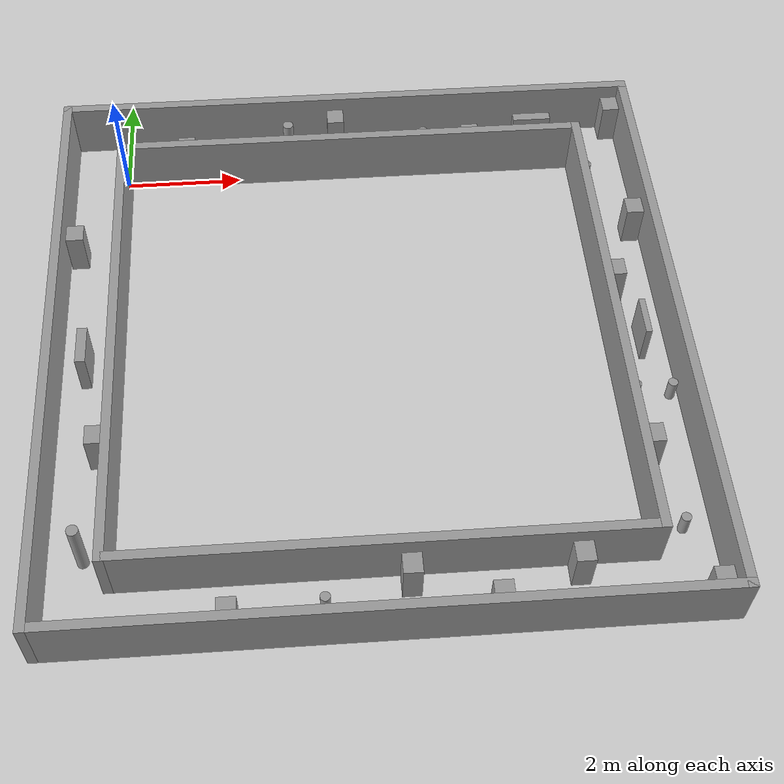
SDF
<sdf version="1.4">
 <world name="default">
  <light name="sun" type="directional">
   <pose>0 0 10 0 -0 0</pose>
   <diffuse>0.8 0.8 0.8 1</diffuse>
   <specular>0.2 0.2 0.2 1</specular>
   <attenuation>
    <range>1000</range>
    <constant>0.9</constant>
    <linear>0.01</linear>
    <quadratic>0.001</quadratic>
   </attenuation>
   <direction>-0.5 0.1 -0.9</direction>
   <spot><inner_angle>0</inner_angle><outer_angle>0</outer_angle><falloff>0</falloff></spot>
  </light>
  <model name="ground_plane">
   <static>1</static>
   <link name="link">
    <collision name="collision">
     <geometry><plane><normal>0 0 1</normal><size>100 100</size></plane></geometry>
     <surface>
      <contact><collide_bitmask>65535</collide_bitmask></contact>
      <friction><ode><mu>100</mu><mu2>50</mu2></ode></friction>
     </surface>
    </collision>
    <visual name="visual">
     <cast_shadows>0</cast_shadows>
     <geometry><plane><normal>0 0 1</normal><size>100 100</size></plane></geometry>
     <material>
      <script><uri>file://media/materials/scripts/gazebo.material</uri><name>Gazebo/Grey</name></script>
     </material>
    </visual>
   </link>
  </model>
  <gravity>0 0 -9.8</gravity>
  <magnetic_field>6e-06 2.3e-05 -4.2e-05</magnetic_field>
  <atmosphere type="adiabatic"/>
  <physics type="ode">
   <max_step_size>0.001</max_step_size>
   <real_time_factor>1</real_time_factor>
   <real_time_update_rate>1000</real_time_update_rate>
  </physics>
  <scene><ambient>0.4 0.4 0.4 1</ambient><background>0.7 0.7 0.7 1</background><shadows>1</shadows></scene>
  <spherical_coordinates>
   <surface_model>EARTH_WGS84</surface_model>
   <latitude_deg>0</latitude_deg>
   <longitude_deg>0</longitude_deg>
   <elevation>0</elevation>
   <heading_deg>0</heading_deg>
  </spherical_coordinates>
  <model name="maze_0">
   <pose>4 -4 0 0 -0 0</pose>
   <link name="Wall_1">
    <collision name="Wall_1_Collision">
     <geometry><box><size>10.15 0.15 1</size></box></geometry>
     <pose>0 0 0.5 0 -0 0</pose>
    </collision>
    <visual name="Wall_1_Visual">
     <pose>0 0 0.5 0 -0 0</pose>
     <geometry><box><size>10.15 0.15 1</size></box></geometry>
     <material>
      <script><uri>file://media/materials/scripts/gazebo.material</uri><name>Gazebo/Grey</name></script>
      <ambient>1 1 1 1</ambient>
     </material>
     <meta><layer>0</layer></meta>
    </visual>
    <pose>-0 5 0 0 -0 0</pose>
   </link>
   <link name="Wall_2">
    <collision name="Wall_2_Collision">
     <geometry><box><size>10.15 0.15 1</size></box></geometry>
     <pose>0 0 0.5 0 -0 0</pose>
    </collision>
    <visual name="Wall_2_Visual">
     <pose>0 0 0.5 0 -0 0</pose>
     <geometry><box><size>10.15 0.15 1</size></box></geometry>
     <material>
      <script><uri>file://media/materials/scripts/gazebo.material</uri><name>Gazebo/Grey</name></script>
      <ambient>1 1 1 1</ambient>
     </material>
     <meta><layer>0</layer></meta>
    </visual>
    <pose>5 0 0 0 -0 -1.5708</pose>
   </link>
   <link name="Wall_3">
    <collision name="Wall_3_Collision">
     <geometry><box><size>10.15 0.15 1</size></box></geometry>
     <pose>0 0 0.5 0 -0 0</pose>
    </collision>
    <visual name="Wall_3_Visual">
     <pose>0 0 0.5 0 -0 0</pose>
     <geometry><box><size>10.15 0.15 1</size></box></geometry>
     <material>
      <script><uri>file://media/materials/scripts/gazebo.material</uri><name>Gazebo/Grey</name></script>
      <ambient>1 1 1 1</ambient>
     </material>
     <meta><layer>0</layer></meta>
    </visual>
    <pose>-0 -5 0 0 -0 3.14159</pose>
   </link>
   <link name="Wall_4">
    <collision name="Wall_4_Collision">
     <geometry><box><size>10.15 0.15 1</size></box></geometry>
     <pose>0 0 0.5 0 -0 0</pose>
    </collision>
    <visual name="Wall_4_Visual">
     <pose>0 0 0.5 0 -0 0</pose>
     <geometry><box><size>10.15 0.15 1</size></box></geometry>
     <material>
      <script><uri>file://media/materials/scripts/gazebo.material</uri><name>Gazebo/Grey</name></script>
      <ambient>1 1 1 1</ambient>
     </material>
     <meta><layer>0</layer></meta>
    </visual>
    <pose>-5 0 0 0 -0 1.5708</pose>
   </link>
   <link name="Wall_6">
    <collision name="Wall_6_Collision">
     <geometry><box><size>8.15 0.15 1</size></box></geometry>
     <pose>0 0 0.5 0 -0 0</pose>
    </collision>
    <visual name="Wall_6_Visual">
     <pose>0 0 0.5 0 -0 0</pose>
     <geometry><box><size>8.15 0.15 1</size></box></geometry>
     <material>
      <script><uri>file://media/materials/scripts/gazebo.material</uri><name>Gazebo/Grey</name></script>
      <ambient>1 1 1 1</ambient>
     </material>
     <meta><layer>0</layer></meta>
    </visual>
    <pose>-0 4 0 0 -0 0</pose>
   </link>
   <link name="Wall_7">
    <collision name="Wall_7_Collision">
     <geometry><box><size>8.15 0.15 1</size></box></geometry>
     <pose>0 0 0.5 0 -0 0</pose>
    </collision>
    <visual name="Wall_7_Visual">
     <pose>0 0 0.5 0 -0 0</pose>
     <geometry><box><size>8.15 0.15 1</size></box></geometry>
     <material>
      <script><uri>file://media/materials/scripts/gazebo.material</uri><name>Gazebo/Grey</name></script>
      <ambient>1 1 1 1</ambient>
     </material>
     <meta><layer>0</layer></meta>
    </visual>
    <pose>4 0 0 0 -0 -1.5708</pose>
   </link>
   <link name="Wall_8">
    <collision name="Wall_8_Collision">
     <geometry><box><size>8.15 0.15 1</size></box></geometry>
     <pose>0 0 0.5 0 -0 0</pose>
    </collision>
    <visual name="Wall_8_Visual">
     <pose>0 0 0.5 0 -0 0</pose>
     <geometry><box><size>8.15 0.15 1</size></box></geometry>
     <material>
      <script><uri>file://media/materials/scripts/gazebo.material</uri><name>Gazebo/Grey</name></script>
      <ambient>1 1 1 1</ambient>
     </material>
     <meta><layer>0</layer></meta>
    </visual>
    <pose>-0 -4 0 0 -0 3.14159</pose>
   </link>
   <link name="Wall_9">
    <collision name="Wall_9_Collision">
     <geometry><box><size>8.15 0.15 1</size></box></geometry>
     <pose>0 0 0.5 0 -0 0</pose>
    </collision>
    <visual name="Wall_9_Visual">
     <pose>0 0 0.5 0 -0 0</pose>
     <geometry><box><size>8.15 0.15 1</size></box></geometry>
     <material>
      <script><uri>file://media/materials/scripts/gazebo.material</uri><name>Gazebo/Grey</name></script>
      <ambient>1 1 1 1</ambient>
     </material>
     <meta><layer>0</layer></meta>
    </visual>
    <pose>-4 0 0 0 -0 1.5708</pose>
   </link>
   <static>1</static>
  </model>
  <model name="unit_box_clone">
   <pose>6.16031 0.241752 0.371756 2e-06 -4e-06 4.7e-05</pose>
   <link name="link">
    <inertial>
     <mass>1</mass>
     <inertia>
      <ixx>0.166667</ixx>
      <ixy>0</ixy>
      <ixz>0</ixz>
      <iyy>0.166667</iyy>
      <iyz>0</iyz>
      <izz>0.166667</izz>
     </inertia>
    </inertial>
    <collision name="collision">
     <geometry><box><size>0.289995 0.321886 0.743514</size></box></geometry>
    </collision>
    <visual name="visual">
     <geometry><box><size>0.289995 0.321886 0.743514</size></box></geometry>
     <material>
      <script><name>Gazebo/Grey</name><uri>file://media/materials/scripts/gazebo.material</uri></script>
     </material>
    </visual>
   </link>
  </model>
  <model name="unit_box_clone_0">
   <pose>8.78002 0.764057 0.371757 0 -0 0</pose>
   <link name="link">
    <inertial>
     <mass>1</mass>
     <inertia>
      <ixx>0.166667</ixx>
      <ixy>0</ixy>
      <ixz>0</ixz>
      <iyy>0.166667</iyy>
      <iyz>0</iyz>
      <izz>0.166667</izz>
     </inertia>
    </inertial>
    <collision name="collision">
     <geometry><box><size>0.289995 0.321886 0.743514</size></box></geometry>
    </collision>
    <visual name="visual">
     <geometry><box><size>0.289995 0.321886 0.743514</size></box></geometry>
     <material>
      <script><name>Gazebo/Grey</name><uri>file://media/materials/scripts/gazebo.material</uri></script>
     </material>
    </visual>
   </link>
  </model>
  <model name="unit_box_clone_1">
   <pose>8.75983 -1.74367 0.371756 5e-06 2e-06 -3.5e-05</pose>
   <link name="link">
    <inertial>
     <mass>1</mass>
     <inertia>
      <ixx>0.166667</ixx>
      <ixy>0</ixy>
      <ixz>0</ixz>
      <iyy>0.166667</iyy>
      <iyz>0</iyz>
      <izz>0.166667</izz>
     </inertia>
    </inertial>
    <collision name="collision">
     <geometry><box><size>0.289995 0.321886 0.743514</size></box></geometry>
    </collision>
    <visual name="visual">
     <geometry><box><size>0.289995 0.321886 0.743514</size></box></geometry>
     <material>
      <script><name>Gazebo/Grey</name><uri>file://media/materials/scripts/gazebo.material</uri></script>
     </material>
    </visual>
   </link>
  </model>
  <model name="unit_box_clone_2">
   <pose>8.22 -3.07746 0.371757 0 -0 6e-06</pose>
   <link name="link">
    <inertial>
     <mass>1</mass>
     <inertia>
      <ixx>0.166667</ixx>
      <ixy>0</ixy>
      <ixz>0</ixz>
      <iyy>0.166667</iyy>
      <iyz>0</iyz>
      <izz>0.166667</izz>
     </inertia>
    </inertial>
    <collision name="collision">
     <geometry><box><size>0.289995 0.321886 0.743514</size></box></geometry>
    </collision>
    <visual name="visual">
     <geometry><box><size>0.289995 0.321886 0.743514</size></box></geometry>
     <material>
      <script><name>Gazebo/Grey</name><uri>file://media/materials/scripts/gazebo.material</uri></script>
     </material>
    </visual>
   </link>
  </model>
  <model name="unit_box_clone_3">
   <pose>8.2215 -6.32916 0.371757 -0 -0 -9e-06</pose>
   <link name="link">
    <inertial>
     <mass>1</mass>
     <inertia>
      <ixx>0.166667</ixx>
      <ixy>0</ixy>
      <ixz>0</ixz>
      <iyy>0.166667</iyy>
      <iyz>0</iyz>
      <izz>0.166667</izz>
     </inertia>
    </inertial>
    <collision name="collision">
     <geometry><box><size>0.289995 0.321886 0.743514</size></box></geometry>
    </collision>
    <visual name="visual">
     <geometry><box><size>0.289995 0.321886 0.743514</size></box></geometry>
     <material>
      <script><name>Gazebo/Grey</name><uri>file://media/materials/scripts/gazebo.material</uri></script>
     </material>
    </visual>
   </link>
  </model>
  <model name="unit_box_clone_4">
   <pose>8.74183 -8.75702 0.371756 5e-06 -2e-06 -3.7e-05</pose>
   <link name="link">
    <inertial>
     <mass>1</mass>
     <inertia>
      <ixx>0.166667</ixx>
      <ixy>0</ixy>
      <ixz>0</ixz>
      <iyy>0.166667</iyy>
      <iyz>0</iyz>
      <izz>0.166667</izz>
     </inertia>
    </inertial>
    <collision name="collision">
     <geometry><box><size>0.289995 0.321886 0.743514</size></box></geometry>
    </collision>
    <visual name="visual">
     <geometry><box><size>0.289995 0.321886 0.743514</size></box></geometry>
     <material>
      <script><name>Gazebo/Grey</name><uri>file://media/materials/scripts/gazebo.material</uri></script>
     </material>
    </visual>
   </link>
  </model>
  <model name="unit_box_clone_5">
   <pose>6.84068 -8.23595 0.371757 0 0 -3e-06</pose>
   <link name="link">
    <inertial>
     <mass>1</mass>
     <inertia>
      <ixx>0.166667</ixx>
      <ixy>0</ixy>
      <ixz>0</ixz>
      <iyy>0.166667</iyy>
      <iyz>0</iyz>
      <izz>0.166667</izz>
     </inertia>
    </inertial>
    <collision name="collision">
     <geometry><box><size>0.289995 0.321886 0.743514</size></box></geometry>
    </collision>
    <visual name="visual">
     <geometry><box><size>0.289995 0.321886 0.743514</size></box></geometry>
     <material>
      <script><name>Gazebo/Grey</name><uri>file://media/materials/scripts/gazebo.material</uri></script>
     </material>
    </visual>
   </link>
  </model>
  <model name="unit_box_clone_6">
   <pose>5.62265 -8.76128 0.371757 0 -0 1.5e-05</pose>
   <link name="link">
    <inertial>
     <mass>1</mass>
     <inertia>
      <ixx>0.166667</ixx>
      <ixy>0</ixy>
      <ixz>0</ixz>
      <iyy>0.166667</iyy>
      <iyz>0</iyz>
      <izz>0.166667</izz>
     </inertia>
    </inertial>
    <collision name="collision">
     <geometry><box><size>0.289995 0.321886 0.743514</size></box></geometry>
    </collision>
    <visual name="visual">
     <geometry><box><size>0.289995 0.321886 0.743514</size></box></geometry>
     <material>
      <script><name>Gazebo/Grey</name><uri>file://media/materials/scripts/gazebo.material</uri></script>
     </material>
    </visual>
   </link>
  </model>
  <model name="unit_box_clone_7">
   <pose>4.38037 -8.25694 0.371756 -2e-06 -4e-06 2e-05</pose>
   <link name="link">
    <inertial>
     <mass>1</mass>
     <inertia>
      <ixx>0.166667</ixx>
      <ixy>0</ixy>
      <ixz>0</ixz>
      <iyy>0.166667</iyy>
      <iyz>0</iyz>
      <izz>0.166667</izz>
     </inertia>
    </inertial>
    <collision name="collision">
     <geometry><box><size>0.289995 0.321886 0.743514</size></box></geometry>
    </collision>
    <visual name="visual">
     <geometry><box><size>0.289995 0.321886 0.743514</size></box></geometry>
     <material>
      <script><name>Gazebo/Grey</name><uri>file://media/materials/scripts/gazebo.material</uri></script>
     </material>
    </visual>
   </link>
  </model>
  <model name="unit_box_clone_8">
   <pose>1.75034 -8.76405 0.371757 0 0 -3e-06</pose>
   <link name="link">
    <inertial>
     <mass>1</mass>
     <inertia>
      <ixx>0.166667</ixx>
      <ixy>0</ixy>
      <ixz>0</ixz>
      <iyy>0.166667</iyy>
      <iyz>0</iyz>
      <izz>0.166667</izz>
     </inertia>
    </inertial>
    <collision name="collision">
     <geometry><box><size>0.289995 0.321886 0.743514</size></box></geometry>
    </collision>
    <visual name="visual">
     <geometry><box><size>0.289995 0.321886 0.743514</size></box></geometry>
     <material>
      <script><name>Gazebo/Grey</name><uri>file://media/materials/scripts/gazebo.material</uri></script>
     </material>
    </visual>
   </link>
  </model>
  <model name="unit_box_clone_10">
   <pose>-0.220545 -5.80223 0.371757 0 -0 2e-05</pose>
   <link name="link">
    <inertial>
     <mass>1</mass>
     <inertia>
      <ixx>0.166667</ixx>
      <ixy>0</ixy>
      <ixz>0</ixz>
      <iyy>0.166667</iyy>
      <iyz>0</iyz>
      <izz>0.166667</izz>
     </inertia>
    </inertial>
    <collision name="collision">
     <geometry><box><size>0.289995 0.321886 0.743514</size></box></geometry>
    </collision>
    <visual name="visual">
     <geometry><box><size>0.289995 0.321886 0.743514</size></box></geometry>
     <material>
      <script><name>Gazebo/Grey</name><uri>file://media/materials/scripts/gazebo.material</uri></script>
     </material>
    </visual>
   </link>
  </model>
  <model name="unit_box_clone_11">
   <pose>-0.752718 -1.743 0.371758 -3e-06 0 -0.00014</pose>
   <link name="link">
    <inertial>
     <mass>1</mass>
     <inertia>
      <ixx>0.166667</ixx>
      <ixy>0</ixy>
      <ixz>0</ixz>
      <iyy>0.166667</iyy>
      <iyz>0</iyz>
      <izz>0.166667</izz>
     </inertia>
    </inertial>
    <collision name="collision">
     <geometry><box><size>0.289995 0.321886 0.743514</size></box></geometry>
    </collision>
    <visual name="visual">
     <geometry><box><size>0.289995 0.321886 0.743514</size></box></geometry>
     <material>
      <script><name>Gazebo/Grey</name><uri>file://media/materials/scripts/gazebo.material</uri></script>
     </material>
    </visual>
   </link>
  </model>
  <model name="unit_box_clone_clone">
   <pose>3.77127 0.764057 0.371757 0 -0 0</pose>
   <link name="link">
    <inertial>
     <mass>1</mass>
     <inertia>
      <ixx>0.166667</ixx>
      <ixy>0</ixy>
      <ixz>0</ixz>
      <iyy>0.166667</iyy>
      <iyz>0</iyz>
      <izz>0.166667</izz>
     </inertia>
    </inertial>
    <collision name="collision">
     <geometry><box><size>0.289995 0.321886 0.743514</size></box></geometry>
    </collision>
    <visual name="visual">
     <geometry><box><size>0.289995 0.321886 0.743514</size></box></geometry>
     <material>
      <script><name>Gazebo/Grey</name><uri>file://media/materials/scripts/gazebo.material</uri></script>
     </material>
    </visual>
   </link>
  </model>
  <model name="unit_box_clone_clone_0">
   <pose>1.09824 0.235944 0.371757 0 -0 0</pose>
   <link name="link">
    <inertial>
     <mass>1</mass>
     <inertia>
      <ixx>0.166667</ixx>
      <ixy>0</ixy>
      <ixz>0</ixz>
      <iyy>0.166667</iyy>
      <iyz>0</iyz>
      <izz>0.166667</izz>
     </inertia>
    </inertial>
    <collision name="collision">
     <geometry><box><size>0.289995 0.321886 0.743514</size></box></geometry>
    </collision>
    <visual name="visual">
     <geometry><box><size>0.289995 0.321886 0.743514</size></box></geometry>
     <material>
      <script><name>Gazebo/Grey</name><uri>file://media/materials/scripts/gazebo.material</uri></script>
     </material>
    </visual>
   </link>
  </model>
  <model name="unit_box_clone_10_clone">
   <pose>-0.511555 -4.10201 0.371757 0 0 -0.000886</pose>
   <link name="link">
    <inertial>
     <mass>1</mass>
     <inertia>
      <ixx>0.166667</ixx>
      <ixy>0</ixy>
      <ixz>0</ixz>
      <iyy>0.166667</iyy>
      <iyz>0</iyz>
      <izz>0.166667</izz>
     </inertia>
    </inertial>
    <collision name="collision">
     <geometry><box><size>0.162882 0.660597 0.743514</size></box></geometry>
    </collision>
    <visual name="visual">
     <geometry><box><size>0.162882 0.660597 0.743514</size></box></geometry>
     <material>
      <script><name>Gazebo/Grey</name><uri>file://media/materials/scripts/gazebo.material</uri></script>
     </material>
    </visual>
   </link>
  </model>
  <model name="unit_cylinder">
   <pose>-0.38723 -7.56514 0.499996 0 0 -7.7e-05</pose>
   <link name="link">
    <inertial>
     <mass>1</mass>
     <inertia><ixx>0.145833</ixx><ixy>0</ixy><ixz>0</ixz><iyy>0.145833</iyy><iyz>0</iyz><izz>0.125</izz></inertia>
    </inertial>
    <collision name="collision">
     <geometry><cylinder><radius>0.0901617</radius><length>1</length></cylinder></geometry>
    </collision>
    <visual name="visual">
     <geometry><cylinder><radius>0.0901617</radius><length>1</length></cylinder></geometry>
     <material>
      <script><name>Gazebo/Grey</name><uri>file://media/materials/scripts/gazebo.material</uri></script>
     </material>
    </visual>
   </link>
  </model>
  <model name="unit_box_clone_10_clone_clone">
   <pose>7.30851 0.528452 0.371757 -0 -0 -1.57168</pose>
   <link name="link">
    <inertial>
     <mass>1</mass>
     <inertia>
      <ixx>0.166667</ixx>
      <ixy>0</ixy>
      <ixz>0</ixz>
      <iyy>0.166667</iyy>
      <iyz>0</iyz>
      <izz>0.166667</izz>
     </inertia>
    </inertial>
    <collision name="collision">
     <geometry><box><size>0.162882 0.660599 0.743514</size></box></geometry>
    </collision>
    <visual name="visual">
     <geometry><box><size>0.162882 0.660599 0.743514</size></box></geometry>
     <material>
      <script><name>Gazebo/Grey</name><uri>file://media/materials/scripts/gazebo.material</uri></script>
     </material>
    </visual>
   </link>
  </model>
  <model name="unit_cylinder_0">
   <pose>4.64176 0.336494 0.189252 -0 -0 -0</pose>
   <link name="link">
    <inertial>
     <mass>1</mass>
     <inertia><ixx>0.145833</ixx><ixy>0</ixy><ixz>0</ixz><iyy>0.145833</iyy><iyz>0</iyz><izz>0.125</izz></inertia>
    </inertial>
    <collision name="collision">
     <geometry><cylinder><radius>0.0768552</radius><length>0.378523</length></cylinder></geometry>
    </collision>
    <visual name="visual">
     <geometry><cylinder><radius>0.0768552</radius><length>0.378523</length></cylinder></geometry>
     <material>
      <script><name>Gazebo/Grey</name><uri>file://media/materials/scripts/gazebo.material</uri></script>
     </material>
    </visual>
   </link>
  </model>
  <model name="unit_cylinder_0_clone">
   <pose>5.37376 0.685107 0.189261 0 -0 0</pose>
   <link name="link">
    <inertial>
     <mass>1</mass>
     <inertia><ixx>0.145833</ixx><ixy>0</ixy><ixz>0</ixz><iyy>0.145833</iyy><iyz>0</iyz><izz>0.125</izz></inertia>
    </inertial>
    <collision name="collision">
     <geometry><cylinder><radius>0.0768551</radius><length>0.378523</length></cylinder></geometry>
    </collision>
    <visual name="visual">
     <geometry><cylinder><radius>0.0768551</radius><length>0.378523</length></cylinder></geometry>
     <material>
      <script><name>Gazebo/Grey</name><uri>file://media/materials/scripts/gazebo.material</uri></script>
     </material>
    </visual>
   </link>
  </model>
  <model name="unit_cylinder_clone">
   <pose>2.91712 0.335406 0.499996 0 0 -7.9e-05</pose>
   <link name="link">
    <inertial>
     <mass>1</mass>
     <inertia><ixx>0.145833</ixx><ixy>0</ixy><ixz>0</ixz><iyy>0.145833</iyy><iyz>0</iyz><izz>0.125</izz></inertia>
    </inertial>
    <collision name="collision">
     <geometry><cylinder><radius>0.0901615</radius><length>1</length></cylinder></geometry>
    </collision>
    <visual name="visual">
     <geometry><cylinder><radius>0.0901615</radius><length>1</length></cylinder></geometry>
     <material>
      <script><name>Gazebo/Grey</name><uri>file://media/materials/scripts/gazebo.material</uri></script>
     </material>
    </visual>
   </link>
  </model>
  <model name="unit_cylinder_0_clone_clone">
   <pose>3.12602 -8.51223 0.189252 -0 -0 -0</pose>
   <link name="link">
    <inertial>
     <mass>1</mass>
     <inertia><ixx>0.145833</ixx><ixy>0</ixy><ixz>0</ixz><iyy>0.145833</iyy><iyz>0</iyz><izz>0.125</izz></inertia>
    </inertial>
    <collision name="collision">
     <geometry><cylinder><radius>0.0768551</radius><length>0.378523</length></cylinder></geometry>
    </collision>
    <visual name="visual">
     <geometry><cylinder><radius>0.0768551</radius><length>0.378523</length></cylinder></geometry>
     <material>
      <script><name>Gazebo/Grey</name><uri>file://media/materials/scripts/gazebo.material</uri></script>
     </material>
    </visual>
   </link>
  </model>
  <model name="unit_cylinder_0_clone_clone_0">
   <pose>6.78335 -8.84815 0.189252 0 -0 5.4e-05</pose>
   <link name="link">
    <inertial>
     <mass>1</mass>
     <inertia><ixx>0.145833</ixx><ixy>0</ixy><ixz>0</ixz><iyy>0.145833</iyy><iyz>0</iyz><izz>0.125</izz></inertia>
    </inertial>
    <collision name="collision">
     <geometry><cylinder><radius>0.0768551</radius><length>0.378523</length></cylinder></geometry>
    </collision>
    <visual name="visual">
     <geometry><cylinder><radius>0.0768551</radius><length>0.378523</length></cylinder></geometry>
     <material>
      <script><name>Gazebo/Grey</name><uri>file://media/materials/scripts/gazebo.material</uri></script>
     </material>
    </visual>
   </link>
  </model>
  <model name="unit_cylinder_0_clone_clone_1">
   <pose>8.4954 -7.59337 0.189252 -0 -0 -0</pose>
   <link name="link">
    <inertial>
     <mass>1</mass>
     <inertia><ixx>0.145833</ixx><ixy>0</ixy><ixz>0</ixz><iyy>0.145833</iyy><iyz>0</iyz><izz>0.125</izz></inertia>
    </inertial>
    <collision name="collision">
     <geometry><cylinder><radius>0.0768551</radius><length>0.378523</length></cylinder></geometry>
    </collision>
    <visual name="visual">
     <geometry><cylinder><radius>0.0768551</radius><length>0.378523</length></cylinder></geometry>
     <material>
      <script><name>Gazebo/Grey</name><uri>file://media/materials/scripts/gazebo.material</uri></script>
     </material>
    </visual>
   </link>
  </model>
  <model name="unit_cylinder_0_clone_clone_2">
   <pose>8.79453 -5.19174 0.189261 0 -0 0</pose>
   <link name="link">
    <inertial>
     <mass>1</mass>
     <inertia><ixx>0.145833</ixx><ixy>0</ixy><ixz>0</ixz><iyy>0.145833</iyy><iyz>0</iyz><izz>0.125</izz></inertia>
    </inertial>
    <collision name="collision">
     <geometry><cylinder><radius>0.0768551</radius><length>0.378523</length></cylinder></geometry>
    </collision>
    <visual name="visual">
     <geometry><cylinder><radius>0.0768551</radius><length>0.378523</length></cylinder></geometry>
     <material>
      <script><name>Gazebo/Grey</name><uri>file://media/materials/scripts/gazebo.material</uri></script>
     </material>
    </visual>
   </link>
  </model>
  <model name="unit_cylinder_0_clone_clone_3">
   <pose>8.21624 -5.18645 0.189252 -0 -0 -0</pose>
   <link name="link">
    <inertial>
     <mass>1</mass>
     <inertia><ixx>0.145833</ixx><ixy>0</ixy><ixz>0</ixz><iyy>0.145833</iyy><iyz>0</iyz><izz>0.125</izz></inertia>
    </inertial>
    <collision name="collision">
     <geometry><cylinder><radius>0.0768551</radius><length>0.378523</length></cylinder></geometry>
    </collision>
    <visual name="visual">
     <geometry><cylinder><radius>0.0768551</radius><length>0.378523</length></cylinder></geometry>
     <material>
      <script><name>Gazebo/Grey</name><uri>file://media/materials/scripts/gazebo.material</uri></script>
     </material>
    </visual>
   </link>
  </model>
  <model name="unit_box_clone_10_clone_clone_clone">
   <pose>8.49893 -4.11323 0.371757 0 1e-06 3.14082</pose>
   <link name="link">
    <inertial>
     <mass>1</mass>
     <inertia>
      <ixx>0.166667</ixx>
      <ixy>0</ixy>
      <ixz>0</ixz>
      <iyy>0.166667</iyy>
      <iyz>0</iyz>
      <izz>0.166667</izz>
     </inertia>
    </inertial>
    <collision name="collision">
     <geometry><box><size>0.100515 0.660599 0.743514</size></box></geometry>
    </collision>
    <visual name="visual">
     <geometry><box><size>0.100515 0.660599 0.743514</size></box></geometry>
     <material>
      <script><name>Gazebo/Grey</name><uri>file://media/materials/scripts/gazebo.material</uri></script>
     </material>
    </visual>
   </link>
  </model>
  <model name="unit_cylinder_0_clone_clone_4">
   <pose>8.22127 -0.370956 0.189261 0 -0 0</pose>
   <link name="link">
    <inertial>
     <mass>1</mass>
     <inertia><ixx>0.145833</ixx><ixy>0</ixy><ixz>0</ixz><iyy>0.145833</iyy><iyz>0</iyz><izz>0.125</izz></inertia>
    </inertial>
    <collision name="collision">
     <geometry><cylinder><radius>0.0768551</radius><length>0.378523</length></cylinder></geometry>
    </collision>
    <visual name="visual">
     <geometry><cylinder><radius>0.0768551</radius><length>0.378523</length></cylinder></geometry>
     <material>
      <script><name>Gazebo/Grey</name><uri>file://media/materials/scripts/gazebo.material</uri></script>
     </material>
    </visual>
   </link>
  </model>
  <model name="unit_cylinder_0_clone_clone_5">
   <pose>8.15186 -1.6599 0.189261 0 0 -2.3e-05</pose>
   <link name="link">
    <inertial>
     <mass>1</mass>
     <inertia><ixx>0.145833</ixx><ixy>0</ixy><ixz>0</ixz><iyy>0.145833</iyy><iyz>0</iyz><izz>0.125</izz></inertia>
    </inertial>
    <collision name="collision">
     <geometry><cylinder><radius>0.0768551</radius><length>0.378523</length></cylinder></geometry>
    </collision>
    <visual name="visual">
     <geometry><cylinder><radius>0.0768551</radius><length>0.378523</length></cylinder></geometry>
     <material>
      <script><name>Gazebo/Grey</name><uri>file://media/materials/scripts/gazebo.material</uri></script>
     </material>
    </visual>
   </link>
  </model>
 </world>
</sdf>
